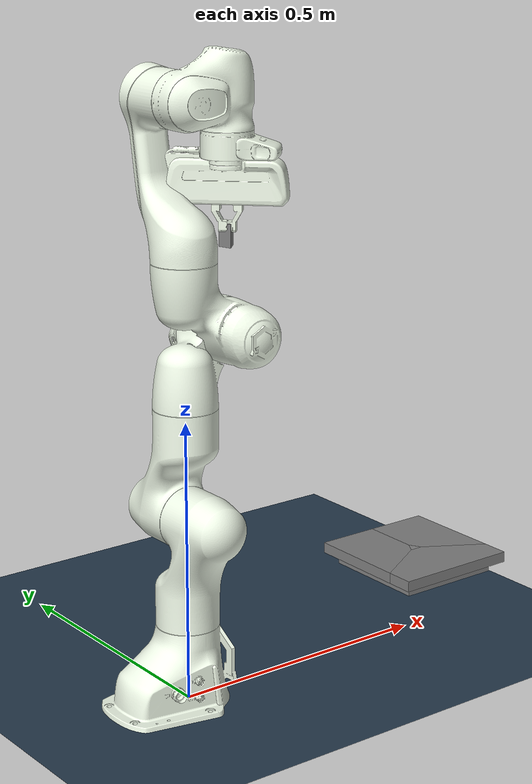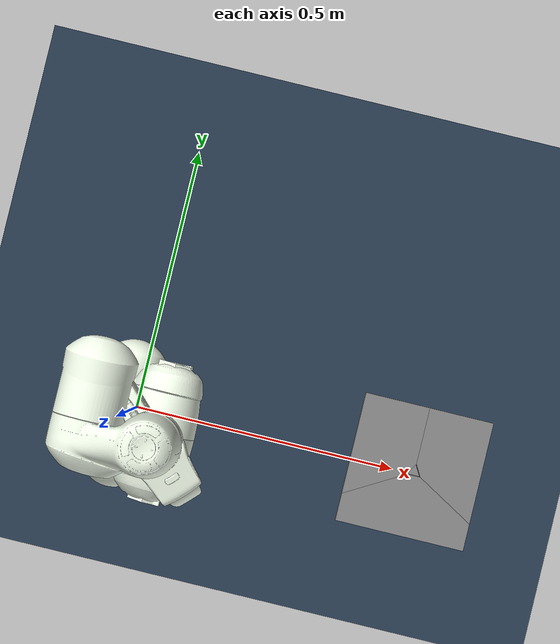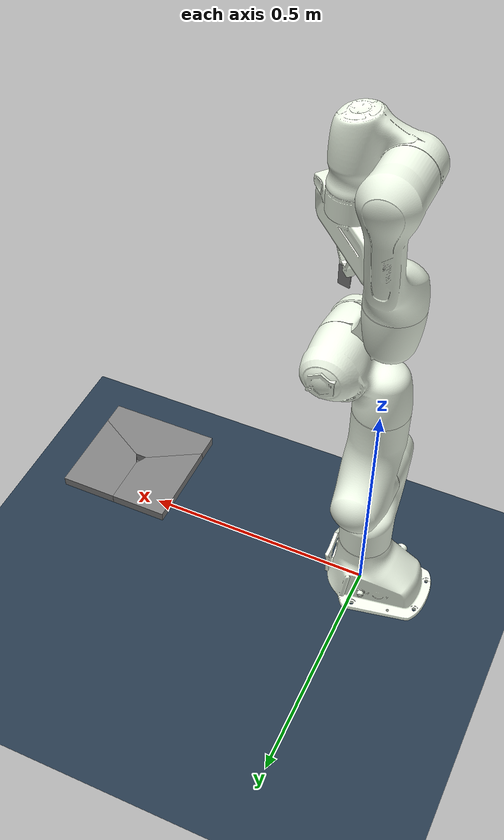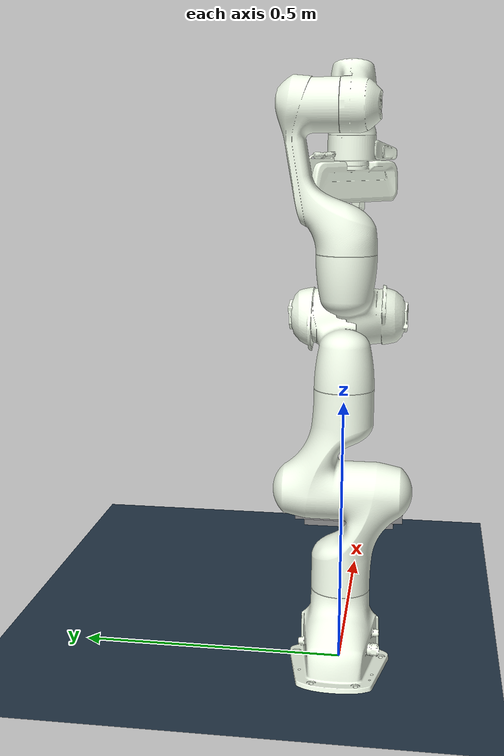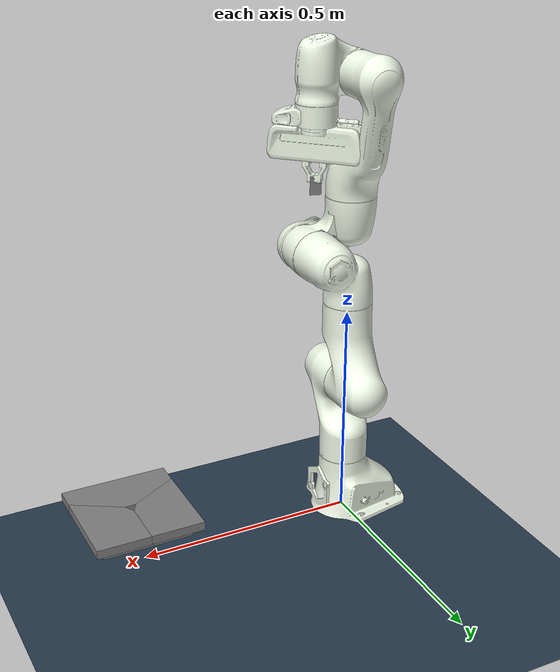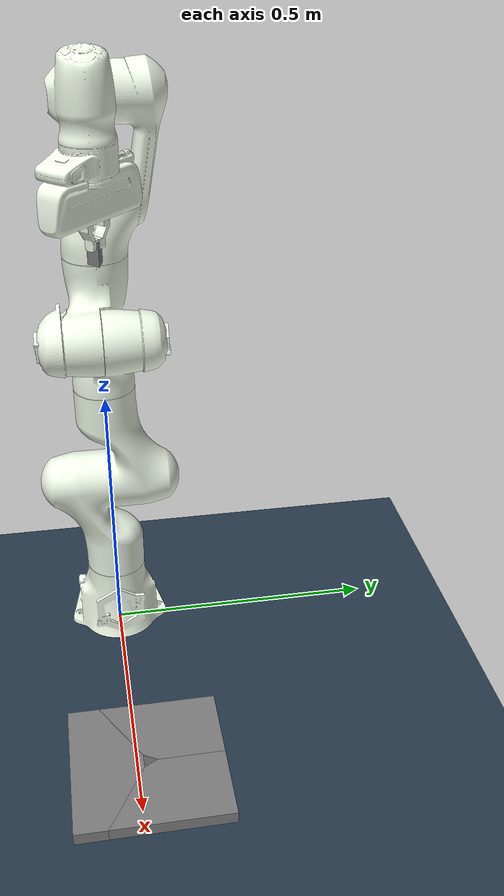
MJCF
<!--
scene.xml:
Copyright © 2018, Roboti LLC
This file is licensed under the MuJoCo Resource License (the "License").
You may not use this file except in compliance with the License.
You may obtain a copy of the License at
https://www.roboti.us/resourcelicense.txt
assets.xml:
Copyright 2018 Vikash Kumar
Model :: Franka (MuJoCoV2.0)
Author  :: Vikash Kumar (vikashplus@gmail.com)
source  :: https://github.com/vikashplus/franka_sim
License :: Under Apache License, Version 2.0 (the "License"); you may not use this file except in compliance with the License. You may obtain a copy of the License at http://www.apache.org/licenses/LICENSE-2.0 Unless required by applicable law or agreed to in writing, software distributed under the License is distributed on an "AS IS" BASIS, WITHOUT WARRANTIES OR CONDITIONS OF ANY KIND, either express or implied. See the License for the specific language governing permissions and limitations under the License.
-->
<!-- change to prev imp: use torque control -->
<mujoco>

  <include file="scene.xml"/>

  <!-- set to default values at the moment -->
  <include file="triangle/triangular_prism.xml"/>
  <default class="contact">
    <default class="peg">
      <geom type="mesh" mesh="prism" euler="0 0 0"
                priority="1" condim="6" friction="0.8 0.05 0.001"
                solimp="0.9 0.95 0.001 0.5 2" solref="0.02 1"/>
    </default>
  </default>

  <include file="triangle/hole_mesh.xml"/>

  <!-- panda robot -->
  <include file="../franka_sim/assets/assets.xml"/>

  <worldbody>
      <include file="chain_peg.xml"/>
  </worldbody>

  <include file='../franka_sim/assets/force_actuator.xml'/>

  <!-- default class to adjust the paramters of peg -->
  <worldbody>
    <body name="hole" pos="0.53 0.012 0.1088">
      <geom name="base" type="box" mass="0.1" pos="0 0 0.01" size="0.1 0.1 0.01"/>
      <geom name="hole1" type="mesh" mesh="hole_prism0" pos="0 0 0.03" />
      <geom name="hole2" type="mesh" mesh="hole_prism1" pos="0 0 0.03" />
      <geom name="hole3" type="mesh" mesh="hole_prism2" pos="0 0 0.03" />
    </body>
  </worldbody>

</mujoco>

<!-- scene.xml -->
<mujoco>
    <statistic extent="2" meansize=".05"/>
    <compiler angle="radian" coordinate="local" eulerseq="XYZ"/>
    <size njmax="5000" nconmax="250"/>
    <option timestep="0.002" solver="Newton" iterations="30" tolerance="1e-10" jacobian="sparse" cone="elliptic"/>
    <size nuser_actuator="5"/>

    <visual>
        <rgba haze="0.15 0.25 0.35 1"/>
        <quality shadowsize="2048"/>
        <map stiffness="700" shadowscale="0.5" fogstart="10" fogend="15" zfar="40" haze="0.3"/>
    </visual>

    <asset>
        <texture type="skybox" builtin="gradient" rgb1="0.3 0.5 0.7" rgb2="0 0 0" width="512" height="512"/>
        <texture name="texplane" type="2d" builtin="checker" rgb1=".2 .3 .4" rgb2=".1 0.15 0.2"
            width="512" height="512" mark="cross" markrgb=".8 .8 .8"/>

        <material name="matplane" reflectance="0.3" texture="texplane" texrepeat="1 1" texuniform="true"/>
    </asset>

    <worldbody>
        <camera mode="track" pos="1 0 1" quat="0.5 .5 .5 .5" />
        <light directional="true" diffuse=".4 .4 .4" specular="0.1 0.1 0.1" pos="0 0 5.0" dir="0 0 -1" castshadow="false"/>
        <light directional="true" diffuse=".6 .6 .6" specular="0.2 0.2 0.2" pos="0 0 4" dir="0 0 -1"/>

        <geom name="ground" type="plane" size="0 0 1" pos="0 0 0" quat="1 0 0 0" material="matplane" condim="1"/>
    </worldbody>
</mujoco>

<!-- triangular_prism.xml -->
<mujoco>
<asset>
  <mesh name="prism" vertex="0.00000000 -0.01437602 0.02000000 0.01245000 0.00718801 0.02000000 -0.01245000 0.00718801 0.02000000 0.00000000 -0.01437602 -0.02000000 0.01245000 0.00718801 -0.02000000 -0.01245000 0.00718801 -0.02000000 "/>
</asset>
</mujoco>

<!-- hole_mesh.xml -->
<mujoco>
<asset>
  <mesh name="hole_prism0" vertex="0.00000000 0.01443376 -0.01000000 0.00000000 0.01443376 0.01000000 -0.01250000 -0.00721688 -0.01000000 -0.01250000 -0.00721688 0.01000000 0.00000000 0.12000000 -0.01000000 0.00000000 0.12000000 0.01000000 -0.12000000 -0.06928203 -0.01000000 -0.12000000 -0.06928203 0.01000000 -0.12000000 0.12000000 -0.01000000 -0.12000000 0.12000000 0.01000000 "/>
  <mesh name="hole_prism1" vertex="-0.01250000 -0.00721688 -0.01000000 -0.01250000 -0.00721688 0.01000000 0.01250000 -0.00721688 -0.01000000 0.01250000 -0.00721688 0.01000000 -0.12000000 -0.06928203 -0.01000000 -0.12000000 -0.06928203 0.01000000 0.12000000 -0.06928203 -0.01000000 0.12000000 -0.06928203 0.01000000 -0.12000000 -0.12000000 -0.01000000 -0.12000000 -0.12000000 0.01000000 0.12000000 -0.12000000 -0.01000000 0.12000000 -0.12000000 0.01000000 "/>
  <mesh name="hole_prism2" vertex="0.01250000 -0.00721688 -0.01000000 0.01250000 -0.00721688 0.01000000 0.00000000 0.01443376 -0.01000000 0.00000000 0.01443376 0.01000000 0.12000000 -0.06928203 -0.01000000 0.12000000 -0.06928203 0.01000000 0.00000000 0.12000000 -0.01000000 0.00000000 0.12000000 0.01000000 0.12000000 0.12000000 -0.01000000 0.12000000 0.12000000 0.01000000 "/>
</asset>
</mujoco>

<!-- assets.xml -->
<mujocoinclude>

    <asset>
        <mesh name="link0_col" file="../franka_sim/meshes/collision/link0.stl"/>
        <mesh name="link1_col" file="../franka_sim/meshes/collision/link1.stl"/>
        <mesh name="link2_col" file="../franka_sim/meshes/collision/link2.stl"/>
        <mesh name="link3_col" file="../franka_sim/meshes/collision/link3.stl"/>
        <mesh name="link4_col" file="../franka_sim/meshes/collision/link4.stl"/>
        <mesh name="link5_col" file="../franka_sim/meshes/collision/link5.stl"/>
        <mesh name="link6_col" file="../franka_sim/meshes/collision/link6.stl"/>
        <mesh name="link7_col" file="../franka_sim/meshes/collision/link7.stl"/>
        <mesh name="hand_col" file="../franka_sim/meshes/collision/hand.stl"/>
        <mesh name="finger_col" file="../franka_sim/meshes/collision/finger.stl" scale='1.0 1.0 1.0'/>
        <mesh name="link0_viz" file="../franka_sim/meshes/visual/link0.stl"/>
        <mesh name="link1_viz" file="../franka_sim/meshes/visual/link1.stl"/>
        <mesh name="link2_viz" file="../franka_sim/meshes/visual/link2.stl"/>
        <mesh name="link3_viz" file="../franka_sim/meshes/visual/link3.stl"/>
        <mesh name="link4_viz" file="../franka_sim/meshes/visual/link4.stl"/>
        <mesh name="link5_viz" file="../franka_sim/meshes/visual/link5.stl"/>
        <mesh name="link6_viz" file="../franka_sim/meshes/visual/link6.stl"/>
        <mesh name="link7_viz" file="../franka_sim/meshes/visual/link7.stl"/>
        <mesh name="hand_viz" file="../franka_sim/meshes/visual/hand.stl"/>
        <mesh name="finger_viz" file="../franka_sim/meshes/visual/finger.stl" scale='1.0 1.0 1.0'/>
    </asset>

    <default>
        <default class="panda">
            <joint pos="0 0 0" axis="0 0 1" limited="true"/>
            <position forcelimited="true" ctrllimited="true" user="1002 40 2001 -0.005 0.005"/>
            <default class="panda_viz">
                <geom contype="0" conaffinity="0" group="0" type="mesh" rgba=".95 .99 .92 1" mass="0"/>
            </default>

            <default class="panda_col">
                <geom contype="1" conaffinity="1" group="3" type="mesh" rgba=".5 .6 .7 1"/>
            </default>
            <default class="panda_arm">
                <joint damping="10.0"/>
            </default>
             <default class="panda_forearm">
                <joint damping="10.0"/>
            </default>
             <default class="panda_finger">
                <joint damping="100" armature='5'/>
                <geom friction="1 0.5 0.0001" solref="0.01 1" solimp="0.8 0.9 0.001" margin="0.001" user="0" rgba="0.5 0.6 0.7 .4" contype="1" conaffinity="0" condim="6" group="3" />
                <position user="1002 40 2001 -0.0001 0.0001"/>
            </default>
        </default>

        <default class="panda_overlay">
            <joint limited="false" damping="1000" armature="1" frictionloss="10"/>
            <geom contype="0" conaffinity="0" group="2" type="mesh" rgba=".42 0.42 0.42 .5"/>
        </default>
    </default>
</mujocoinclude>

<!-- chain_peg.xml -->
<mujocoinclude>

<!-- Robot limits pulled from https://frankaemika.github.io/docs/control_parameters.html#constants -->
    <body name="panda0_link0" childclass="panda" >
        <geom class="panda_viz" mesh="link0_viz"/>
        <geom class="panda_col" mesh="link0_col" mass="2.91242"/>
        <body name="panda0_link1" pos="0 0 0.333">
            <joint name="panda0_joint1" range="-2.8973 2.8973" class="panda_arm"/>
            <geom class="panda_viz" mesh="link1_viz"/>
            <geom class="panda_col" mesh="link1_col" mass="2.7063"/>
            <body name="panda0_link2" pos="0 0 0" quat="0.707107 -0.707107 0 0">
                <joint name="panda0_joint2" range="-1.7628 1.7628" class="panda_arm"/>
                <geom class="panda_viz" mesh="link2_viz"/>
                <geom class="panda_col" mesh="link2_col" mass="2.73046"/>
                <body name="panda0_link3" pos="0 -0.316 0" quat="0.707107 0.707107 0 0">
                    <joint name="panda0_joint3" range="-2.8973 2.8973" class="panda_arm"/>
                    <geom class="panda_viz" mesh="link3_viz"/>
                    <geom class="panda_col" mesh="link3_col" mass="2.04104"/>
                    <body name="panda0_link4" pos="0.0825 0 0" quat="0.707107 0.707107 0 0">
                        <joint name="panda0_joint4" range="-3.0718 -0.4" class="panda_arm"/>
                        <geom class="panda_viz" mesh="link4_viz"/>
                        <geom class="panda_col" mesh="link4_col" mass="2.08129"/>
                        <body name="panda0_link5" pos="-0.0825 0.384 0" quat="0.707107 -0.707107 0 0">
                            <joint name="panda0_joint5" range="-2.8973 2.8973" class="panda_forearm"/>
                            <geom class="panda_viz" mesh="link5_viz"/>
                            <geom class="panda_col" mesh="link5_col" mass="3.00049"/>
                            <body name="panda0_link6" pos="0 0 0" quat="0.707107 0.707107 0 0">
                                <joint name="panda0_joint6" range="-0.0873 3.8223" class="panda_forearm"/>
                                <geom class="panda_viz" mesh="link6_viz"/>
                                <geom class="panda_col" mesh="link6_col" mass="1.3235"/>
                                <body name="panda0_link7" pos="0.088 0 0" euler='1.57 0 0'>
                                    <joint name="panda0_joint7" range="-2.8973 2.8973" class="panda_forearm"/>
                                    <geom class="panda_viz" mesh="link7_viz"/>
                                    <geom class="panda_col" mesh="link7_col" mass="0.2"/>
                                    <geom pos="0 0 0.107" quat="0.92388 0 0 -0.382683" class="panda_viz" mesh="hand_viz"/>
                                    <geom pos="0 0 0.107" quat="0.92388 0 0 -0.382683" class="panda_col" mesh="hand_col" mass="0.81909"/>
                                    <!-- change default position to fit the peg-->
                                    <body name="panda0_leftfinger" pos="0.0 0.0 0.1654" quat="0.92388 0 0 -0.382683" childclass='panda_finger'>
                                        <inertial pos="-1.57863e-05 0.0118731 0.0434103" quat="0.705868 0.0310348 -0.0314925 0.706962" mass="0.0927059" diaginertia="6.57134e-05 6.09611e-05 1.09932e-05" />
                                        <joint name="panda0_finger_joint1"  axis="0 1 0" type="slide" range="0 0.04" class="panda_finger"/>
                                        <geom class="panda_viz" mesh="finger_viz"/>
                                        <geom class="panda_col" mesh="finger_col"/>

                                    </body>
                                    <!-- change default position to fit the peg-->
                                    <body name="panda0_rightfinger" pos="0 0 0.1654" quat="0.92388 0 0 -0.382683"  childclass='panda_finger'>
                                        <inertial pos="1.57863e-05 -0.0118731 0.0434103" quat="0.705868 -0.0310348 0.0314925 0.706962" mass="0.0927059" diaginertia="6.57134e-05 6.09611e-05 1.09932e-05" />
                                        <joint name="panda0_finger_joint2" axis="0 -1 0" type="slide" range="0 0.04" class="panda_finger"/>
                                        <geom quat="0 0 0 1" class="panda_viz" mesh="finger_viz"/>
                                        <geom class="panda_col" mesh="finger_col"/>
                                    </body>
                                    <body name="peg" pos="0 0 0.225" euler="0 0 -0.78539">
                                      <geom name="peg" class="peg"/>
                                      <site name='end_effector' pos='0 0 0.02' size='0.002'/>
                                    </body>
                                </body>
                            </body>
                        </body>
                    </body>
                </body>
            </body>
        </body>
    </body>
</mujocoinclude>

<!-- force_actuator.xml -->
<mujocoinclude>

    <actuator>
        <motor name="panda0_joint1" joint="panda0_joint1" class="panda" ctrllimited="false" forcelimited="true" forcerange="-87 87" ctrlrange="-2.9671 2.9671"/> <!-- velocity="2.1750" -->
        <motor name="panda0_joint2" joint="panda0_joint2" class="panda" ctrllimited="false" forcelimited="true" forcerange="-87 87" ctrlrange="-1.8326 1.8326"/> <!-- velocity="2.1750" -->
        <motor name="panda0_joint3" joint="panda0_joint3" class="panda" ctrllimited="false" forcelimited="true" forcerange="-87 87" ctrlrange="-2.9671 2.9671"/> <!-- velocity="2.1750" -->
        <motor name="panda0_joint4" joint="panda0_joint4" class="panda" ctrllimited="false" forcelimited="true" forcerange="-87 87" ctrlrange="-3.1416 0.0"/> <!-- velocity="2.1750" -->
        <motor name="panda0_joint5" joint="panda0_joint5" class="panda" ctrllimited="false" forcelimited="true" forcerange="-12 12" ctrlrange="-2.9671 2.9671"/> <!-- velocity="2.6100" -->
        <motor name="panda0_joint6" joint="panda0_joint6" class="panda" ctrllimited="false" forcelimited="true" forcerange="-12 12" ctrlrange="-3.7525 2.1817"/> <!-- velocity="2.6100" -->
        <motor name="panda0_joint7" joint="panda0_joint7" class="panda" ctrllimited="false" forcelimited="true" forcerange="-12 12" ctrlrange="-2.9671 2.9671"/> <!-- velocity="2.9671" -->
        <motor name="r_gripper_finger_joint" joint="panda0_finger_joint1" class="panda_finger" forcerange="-70 70" ctrlrange="0 0.04"/> <!-- velocity=".2" -->
        <motor name="l_gripper_finger_joint" joint="panda0_finger_joint2" class="panda_finger" forcerange="-70 70" ctrlrange="0 0.04"/> <!-- velocity=".2" -->
    </actuator>
</mujocoinclude>
